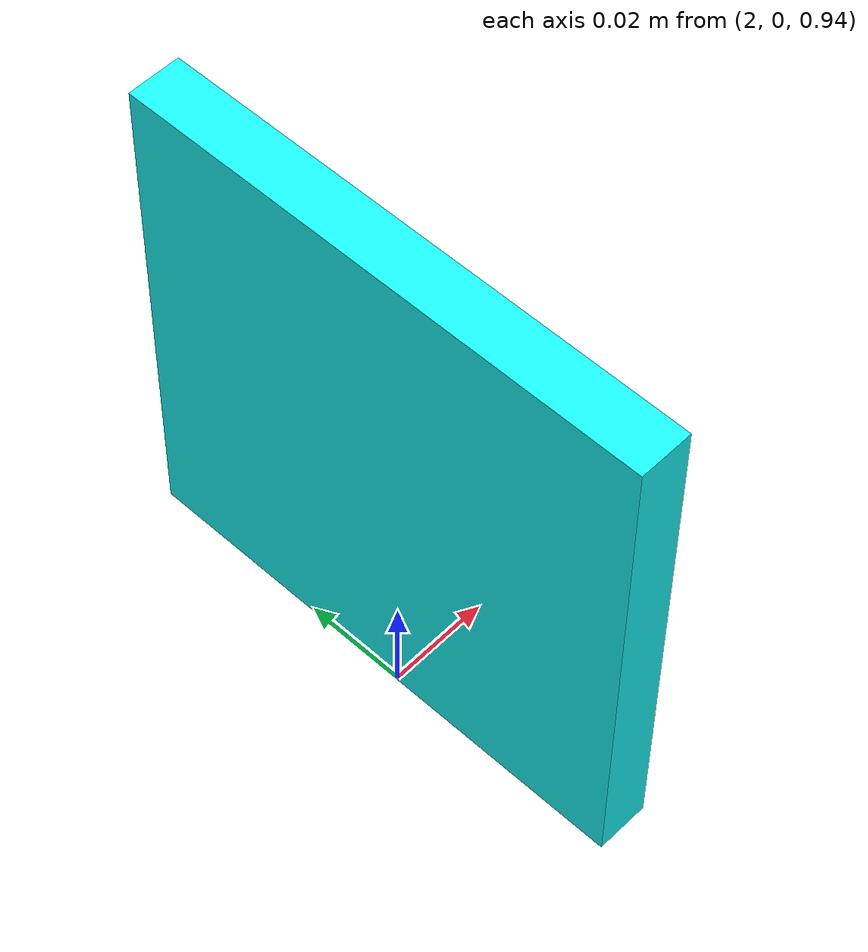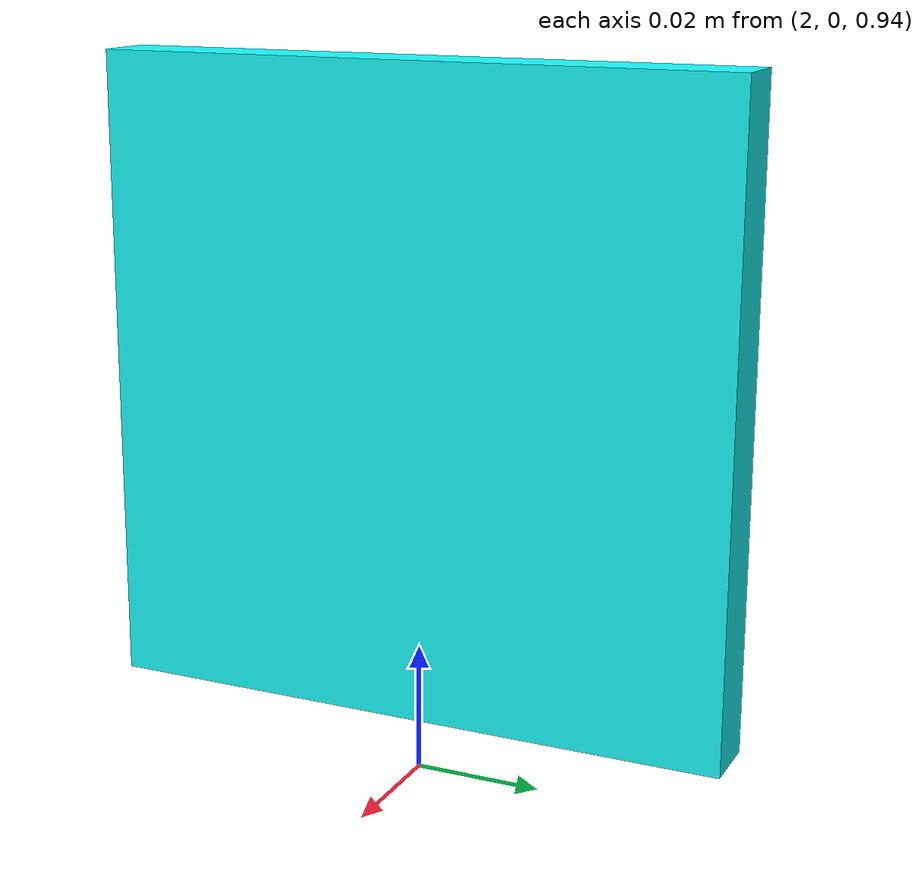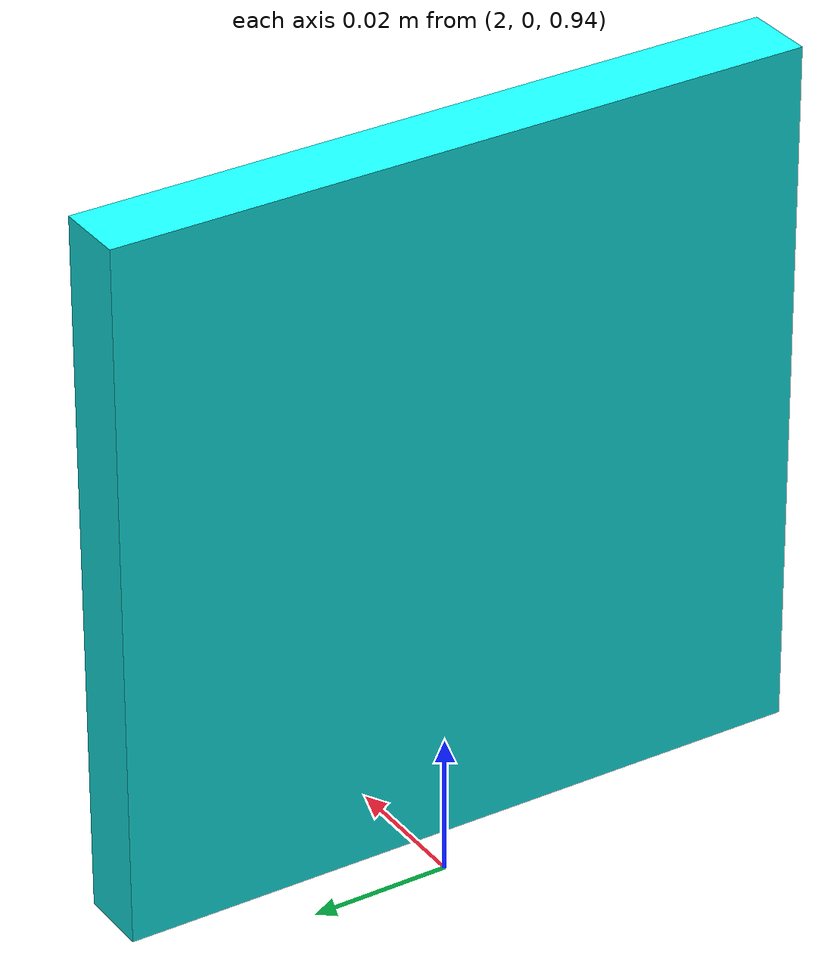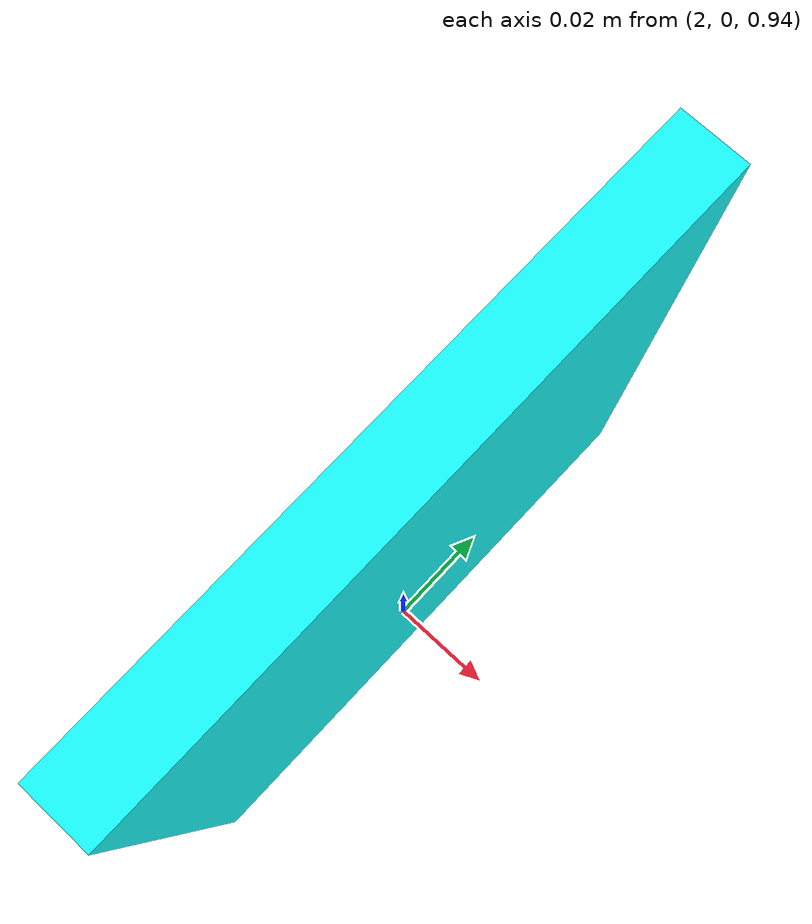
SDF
<?xml version="1.0"?>
<sdf version="1.7">
  <world name="default">

    <!-- Luce dal Fuel -->
    <include>
      <uri>https://fuel.gazebosim.org/1.0/OpenRobotics/models/Sun</uri>
    </include>

    <!-- Piano dal Fuel -->
    <include>
      <uri>https://fuel.gazebosim.org/1.0/OpenRobotics/models/Ground Plane</uri>
    </include>

    <!-- ArUco locale (assicurati che model://arucotag esista) -->
    <include>
      <uri>model://arucotag</uri>
      <name>arucotag</name>
      <pose>2 0 1 0 1.57 0</pose>
    </include>

    <!-- Gravità (metti 0 0 -9.81 per fisica realistica) -->
    <gravity>0 0 -9.81</gravity>

    <!-- Camera GUI opzionale -->
    <gui fullscreen="0">
      <camera name="user_camera">
        <pose>4.92736 -4.37661 3.74008 0 0.275643 2.35619</pose>
        <view_controller>orbit</view_controller>
      </camera>
    </gui>

  </world>
</sdf>

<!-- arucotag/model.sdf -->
<sdf version='1.9'>
  <model name='arucotag'>
    <static>true</static>
    <pose>0 0 0.001 0 0 0</pose>
    <link name='base'>
      <visual name='base_visual'>
        <geometry>
          <box>
            <size>0.1 0.1 0.01</size>
          </box>
        </geometry>
        <material>
          <diffuse>0.1 1 1 1</diffuse>
          <specular>0.4 0.4 0.4 1</specular>
          <pbr>
            <metal>
              <albedo_map>aruco-25.png</albedo_map>
            </metal>
          </pbr>
        </material>
      </visual>
    </link>
  </model>
</sdf>
